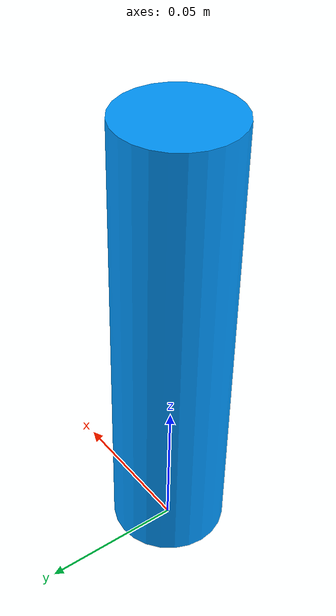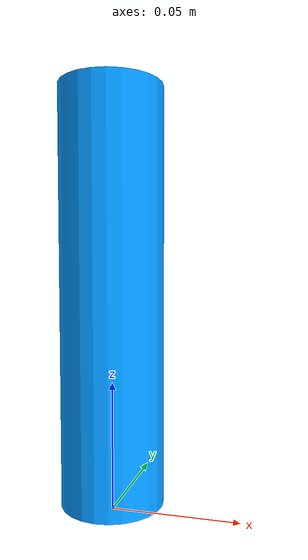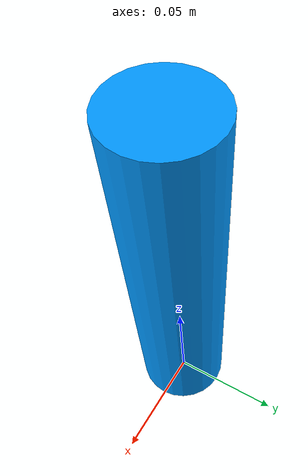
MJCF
<mujoco model="cylinder">
  <option timestep="0.001" integrator="implicitfast" iterations="100"/>

  <worldbody>
    <body name="body_obj_cylinder">
      <freejoint />

      <!-- Visual geom (no collision, no mass) -->
      <geom
        name="cylinder_visual"
        type="cylinder"
        size="0.02 0.08"
        pos="0 0 0.083"
        rgba="0 0.6 1 1"
        group="2"
        contype="0"
        conaffinity="0"
        mass="0"
        solimp="0.998 0.998 0.001"
        solref="0.001 1"
        friction="0.95 0.3 0.1"
      />

      <!-- Physics/collision geom -->
      <geom
        name="cylinder_physics"
        type="cylinder"
        size="0.02 0.08"
        pos="0 0 0.083"
        rgba="0.8 0.8 0.8 0.0"
        group="3"
        contype="1"
        conaffinity="1"
        density="100"
        solimp="0.998 0.998 0.001"
        solref="0.001 1"
        friction="0.95 0.3 0.1"
        margin="0.0005"
      />
    </body>
  </worldbody>
</mujoco>
